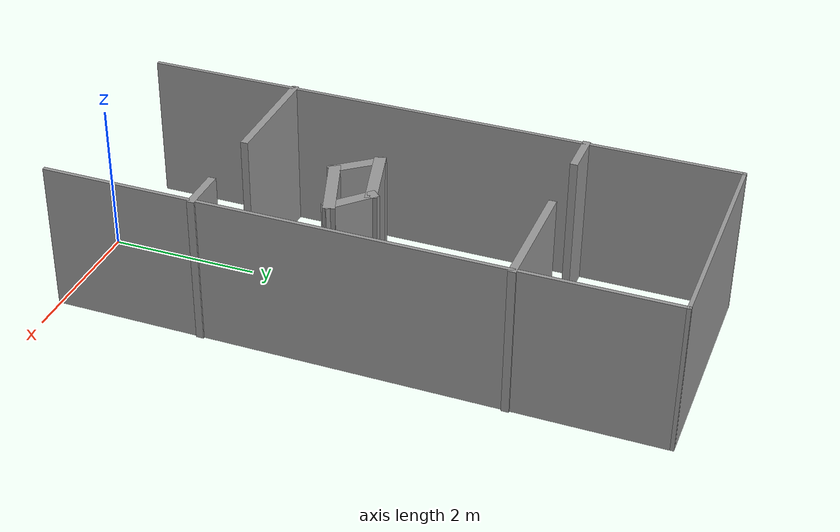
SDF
<?xml version='1.0'?>
<sdf version='1.6'>
  <model name='group_A'>
    <pose frame=''>0 4 0 0 -0 0</pose>
    <link name='Wall_0'>
      <collision name='Wall_0_Collision'>
        <geometry>
          <box>
            <size>8.05 0.05 2</size>
          </box>
        </geometry>
        <pose frame=''>0 0 1 0 -0 0</pose>
      </collision>
      <visual name='Wall_0_Visual'>
        <pose frame=''>0 0 1 0 -0 0</pose>
        <geometry>
          <box>
            <size>8.05 0.05 2</size>
          </box>
        </geometry>
        <material>
          <script>
            <uri>file://media/materials/scripts/gazebo.material</uri>
            <name>Gazebo/Grey</name>
          </script>
          <ambient>1 1 1 1</ambient>
        </material>
      </visual>
      <pose frame=''>-1.5 0 0 0 -0 1.5708</pose>
    </link>
    <link name='Wall_1'>
      <collision name='Wall_1_Collision'>
        <geometry>
          <box>
            <size>3.05004 0.05 2</size>
          </box>
        </geometry>
        <pose frame=''>0 0 1 0 -0 0</pose>
      </collision>
      <visual name='Wall_1_Visual'>
        <pose frame=''>0 0 1 0 -0 0</pose>
        <geometry>
          <box>
            <size>3.05004 0.05 2</size>
          </box>
        </geometry>
        <material>
          <script>
            <uri>file://media/materials/scripts/gazebo.material</uri>
            <name>Gazebo/Grey</name>
          </script>
          <ambient>1 1 1 1</ambient>
        </material>
      </visual>
      <pose frame=''>0 4 0 0 -0 0</pose>
    </link>
    <link name='Wall_10'>
      <collision name='Wall_10_Collision'>
        <geometry>
          <box>
            <size>1.6 0.1 2</size>
          </box>
        </geometry>
        <pose frame=''>0 0 1 0 -0 0</pose>
      </collision>
      <visual name='Wall_10_Visual'>
        <pose frame=''>0 0 1 0 -0 0</pose>
        <geometry>
          <box>
            <size>1.6 0.1 2</size>
          </box>
        </geometry>
        <material>
          <script>
            <uri>file://media/materials/scripts/gazebo.material</uri>
            <name>Gazebo/Grey</name>
          </script>
          <ambient>1 1 1 1</ambient>
        </material>
      </visual>
      <pose frame=''>0.75 2 0 0 -0 0</pose>
    </link>
    <link name='Wall_12'>
      <collision name='Wall_12_Collision'>
        <geometry>
          <box>
            <size>0.728011 0.15 2</size>
          </box>
        </geometry>
        <pose frame=''>0 0 1 0 -0 0</pose>
      </collision>
      <visual name='Wall_12_Visual'>
        <pose frame=''>0 0 1 0 -0 0</pose>
        <geometry>
          <box>
            <size>0.728011 0.15 2</size>
          </box>
        </geometry>
        <material>
          <script>
            <uri>file://media/materials/scripts/gazebo.material</uri>
            <name>Gazebo/Grey</name>
          </script>
          <ambient>1 1 1 1</ambient>
        </material>
      </visual>
      <pose frame=''>0.0225 -0.483 0 0 -0 2.25202</pose>
    </link>
    <link name='Wall_13'>
      <collision name='Wall_13_Collision'>
        <geometry>
          <box>
            <size>0.953171 0.15 2</size>
          </box>
        </geometry>
        <pose frame=''>0 0 1 0 -0 0</pose>
      </collision>
      <visual name='Wall_13_Visual'>
        <pose frame=''>0 0 1 0 -0 0</pose>
        <geometry>
          <box>
            <size>0.953171 0.15 2</size>
          </box>
        </geometry>
        <material>
          <script>
            <uri>file://media/materials/scripts/gazebo.material</uri>
            <name>Gazebo/Grey</name>
          </script>
          <ambient>1 1 1 1</ambient>
        </material>
      </visual>
      <pose frame=''>0.218 -0.15875 0 0 -0 0.251018</pose>
    </link>
    <link name='Wall_14'>
      <collision name='Wall_14_Collision'>
        <geometry>
          <box>
            <size>0.700204 0.15 2</size>
          </box>
        </geometry>
        <pose frame=''>0 0 1 0 -0 0</pose>
      </collision>
      <visual name='Wall_14_Visual'>
        <pose frame=''>0 0 1 0 -0 0</pose>
        <geometry>
          <box>
            <size>0.700204 0.15 2</size>
          </box>
        </geometry>
        <material>
          <script>
            <uri>file://media/materials/scripts/gazebo.material</uri>
            <name>Gazebo/Grey</name>
          </script>
          <ambient>1 1 1 1</ambient>
        </material>
      </visual>
      <pose frame=''>0.8065 -0.2485 0 0 0 -0.759697</pose>
    </link>
    <link name='Wall_15'>
      <collision name='Wall_15_Collision'>
        <geometry>
          <box>
            <size>1.0065 0.15 2</size>
          </box>
        </geometry>
        <pose frame=''>0 0 1 0 -0 0</pose>
      </collision>
      <visual name='Wall_15_Visual'>
        <pose frame=''>0 0 1 0 -0 0</pose>
        <geometry>
          <box>
            <size>1.0065 0.15 2</size>
          </box>
        </geometry>
        <material>
          <script>
            <uri>file://media/materials/scripts/gazebo.material</uri>
            <name>Gazebo/Grey</name>
          </script>
          <ambient>1 1 1 1</ambient>
        </material>
      </visual>
      <pose frame=''>0.5995 -0.57275 0 0 0 -2.8215</pose>
    </link>
    <link name='Wall_2'>
      <collision name='Wall_2_Collision'>
        <geometry>
          <box>
            <size>8.05 0.05 2</size>
          </box>
        </geometry>
        <pose frame=''>0 0 1 0 -0 0</pose>
      </collision>
      <visual name='Wall_2_Visual'>
        <pose frame=''>0 0 1 0 -0 0</pose>
        <geometry>
          <box>
            <size>8.05 0.05 2</size>
          </box>
        </geometry>
        <material>
          <script>
            <uri>file://media/materials/scripts/gazebo.material</uri>
            <name>Gazebo/Grey</name>
          </script>
          <ambient>1 1 1 1</ambient>
        </material>
      </visual>
      <pose frame=''>1.5 0 0 0 0 -1.5708</pose>
    </link>
    <link name='Wall_4'>
      <collision name='Wall_4_Collision'>
        <geometry>
          <box>
            <size>1.6 0.1 2</size>
          </box>
        </geometry>
        <pose frame=''>0 0 1 0 -0 0</pose>
      </collision>
      <visual name='Wall_4_Visual'>
        <pose frame=''>0 0 1 0 -0 0</pose>
        <geometry>
          <box>
            <size>1.6 0.1 2</size>
          </box>
        </geometry>
        <material>
          <script>
            <uri>file://media/materials/scripts/gazebo.material</uri>
            <name>Gazebo/Grey</name>
          </script>
          <ambient>1 1 1 1</ambient>
        </material>
      </visual>
      <pose frame=''>-0.75 -2 0 0 -0 0</pose>
    </link>
    <link name='Wall_6'>
      <collision name='Wall_6_Collision'>
        <geometry>
          <box>
            <size>0.6 0.1 2</size>
          </box>
        </geometry>
        <pose frame=''>0 0 1 0 -0 0</pose>
      </collision>
      <visual name='Wall_6_Visual'>
        <pose frame=''>0 0 1 0 -0 0</pose>
        <geometry>
          <box>
            <size>0.6 0.1 2</size>
          </box>
        </geometry>
        <material>
          <script>
            <uri>file://media/materials/scripts/gazebo.material</uri>
            <name>Gazebo/Grey</name>
          </script>
          <ambient>1 1 1 1</ambient>
        </material>
      </visual>
      <pose frame=''>1.25 -2 0 0 -0 0</pose>
    </link>
    <link name='Wall_8'>
      <collision name='Wall_8_Collision'>
        <geometry>
          <box>
            <size>0.6 0.1 2</size>
          </box>
        </geometry>
        <pose frame=''>0 0 1 0 -0 0</pose>
      </collision>
      <visual name='Wall_8_Visual'>
        <pose frame=''>0 0 1 0 -0 0</pose>
        <geometry>
          <box>
            <size>0.6 0.1 2</size>
          </box>
        </geometry>
        <material>
          <script>
            <uri>file://media/materials/scripts/gazebo.material</uri>
            <name>Gazebo/Grey</name>
          </script>
          <ambient>1 1 1 1</ambient>
        </material>
      </visual>
      <pose frame=''>-1.25 2 0 0 -0 0</pose>
    </link>
    <static>1</static>
  </model>
</sdf>
